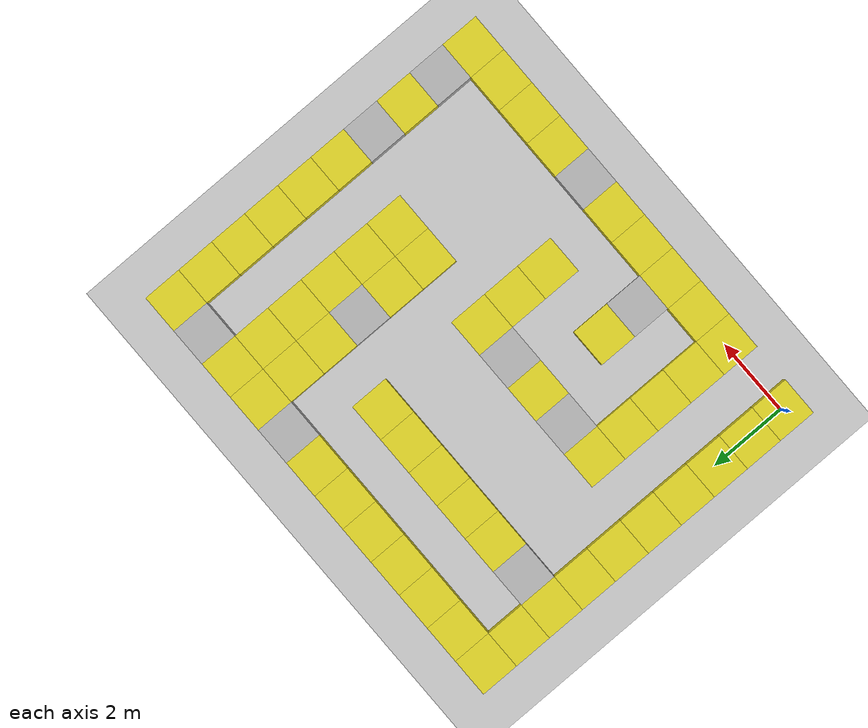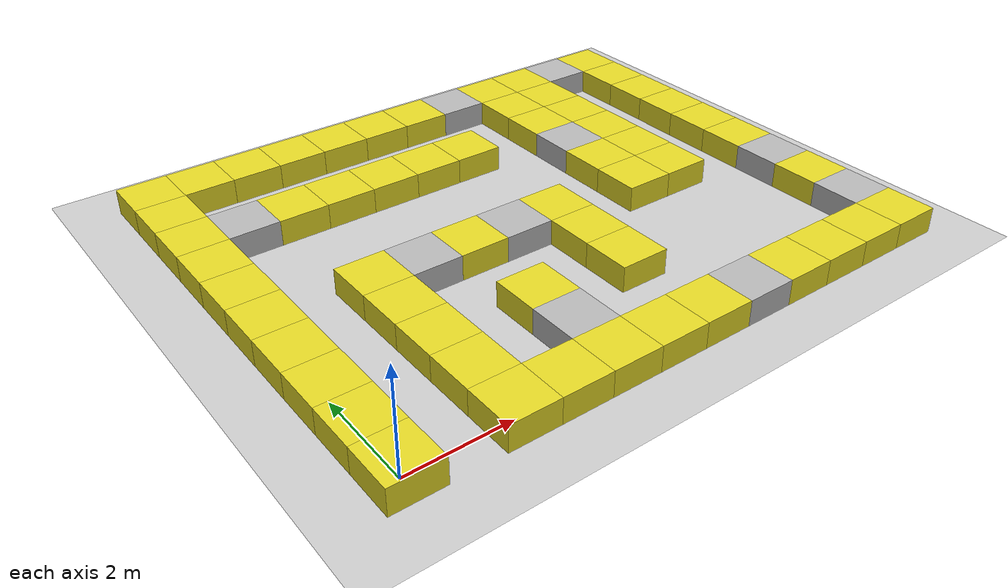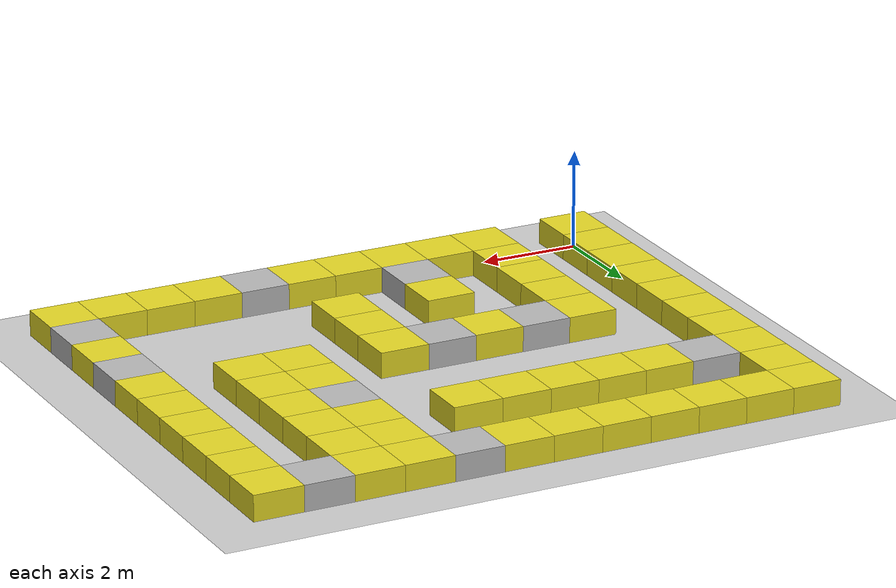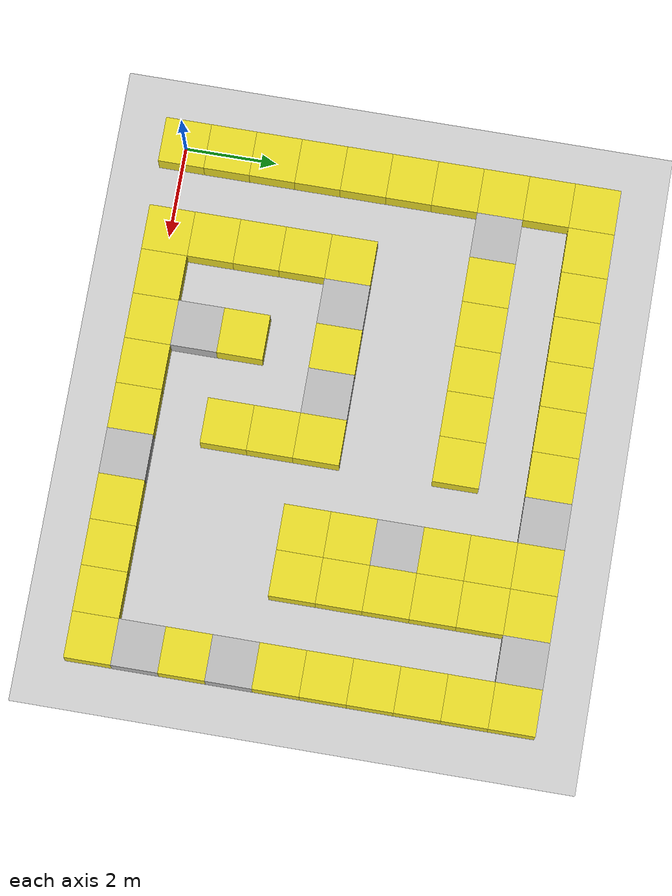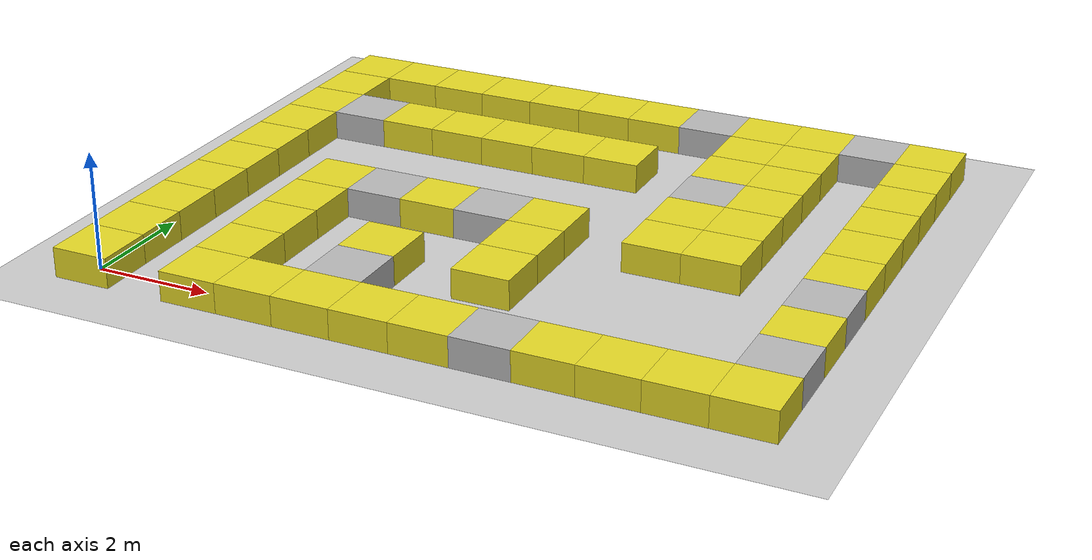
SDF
<sdf version="1.4">
 <world name="default">
  <scene><ambient>0.4 0.4 0.4 1</ambient><background>0.7 0.7 0.7 1</background><shadows>1</shadows></scene>
  <physics type="ode">
   <max_step_size>0.001</max_step_size>
   <real_time_factor>1</real_time_factor>
   <real_time_update_rate>1000</real_time_update_rate>
   <gravity>0 0 -9.8</gravity>
  </physics>
  <light name="sun" type="directional">
   <pose>0 0 10 0 -0 0</pose>
   <diffuse>0.8 0.8 0.8 1</diffuse>
   <specular>0.2 0.2 0.2 1</specular>
   <attenuation>
    <range>1000</range>
    <constant>0.9</constant>
    <linear>0.01</linear>
    <quadratic>0.001</quadratic>
   </attenuation>
   <direction>-0.5 0.1 -0.9</direction>
  </light>
  <model name="ground_plane">
   <static>1</static>
   <link name="link">
    <collision name="collision">
     <geometry><plane><normal>0 0 1</normal><size>100 100</size></plane></geometry>
     <surface><friction><ode><mu>100</mu><mu2>50</mu2></ode></friction></surface>
    </collision>
    <visual name="visual">
     <cast_shadows>0</cast_shadows>
     <geometry><plane><normal>0 0 1</normal><size>100 100</size></plane></geometry>
     <material>
      <script><uri>file://media/materials/scripts/gazebo.material</uri><name>Gazebo/Grey</name></script>
     </material>
    </visual>
    <velocity_decay><linear>0</linear><angular>0</angular></velocity_decay>
   </link>
  </model>
  <spherical_coordinates>
   <surface_model>EARTH_WGS84</surface_model>
   <latitude_deg>0</latitude_deg>
   <longitude_deg>0</longitude_deg>
   <elevation>0</elevation>
   <heading_deg>0</heading_deg>
  </spherical_coordinates>
  <model name="unit_box_1">
   <link name="link">
    <inertial>
     <mass>1</mass>
     <inertia><ixx>1</ixx><ixy>0</ixy><ixz>0</ixz><iyy>1</iyy><iyz>0</iyz><izz>1</izz></inertia>
    </inertial>
    <collision name="collision"><geometry><box><size>1 1 1</size></box></geometry></collision>
    <visual name="visual">
     <geometry><box><size>1 1 1</size></box></geometry>
     <material>
      <script><uri>file://media/materials/scripts/gazebo.material</uri><name>Gazebo/Yellow</name></script>
     </material>
    </visual>
    <velocity_decay><linear>0</linear><angular>0</angular></velocity_decay>
   </link>
   <static>1</static>
  </model>
  <model name="unit_box_2">
   <pose>2 0 0 0 -0 0</pose>
   <link name="link">
    <inertial>
     <mass>1</mass>
     <inertia><ixx>1</ixx><ixy>0</ixy><ixz>0</ixz><iyy>1</iyy><iyz>0</iyz><izz>1</izz></inertia>
    </inertial>
    <collision name="collision"><geometry><box><size>1 1 1</size></box></geometry></collision>
    <visual name="visual">
     <geometry><box><size>1 1 1</size></box></geometry>
     <material>
      <script><uri>file://media/materials/scripts/gazebo.material</uri><name>Gazebo/Yellow</name></script>
     </material>
    </visual>
    <velocity_decay><linear>0</linear><angular>0</angular></velocity_decay>
   </link>
   <static>1</static>
  </model>
  <model name="unit_box_3">
   <pose>3 0 0 0 -0 0</pose>
   <link name="link">
    <inertial>
     <mass>1</mass>
     <inertia><ixx>1</ixx><ixy>0</ixy><ixz>0</ixz><iyy>1</iyy><iyz>0</iyz><izz>1</izz></inertia>
    </inertial>
    <collision name="collision"><geometry><box><size>1 1 1</size></box></geometry></collision>
    <visual name="visual">
     <geometry><box><size>1 1 1</size></box></geometry>
     <material>
      <script><uri>file://media/materials/scripts/gazebo.material</uri><name>Gazebo/Yellow</name></script>
     </material>
    </visual>
    <velocity_decay><linear>0</linear><angular>0</angular></velocity_decay>
   </link>
   <static>1</static>
  </model>
  <model name="unit_box_4">
   <pose>4 0 0 0 -0 0</pose>
   <link name="link">
    <inertial>
     <mass>1</mass>
     <inertia><ixx>1</ixx><ixy>0</ixy><ixz>0</ixz><iyy>1</iyy><iyz>0</iyz><izz>1</izz></inertia>
    </inertial>
    <collision name="collision"><geometry><box><size>1 1 1</size></box></geometry></collision>
    <visual name="visual">
     <geometry><box><size>1 1 1</size></box></geometry>
     <material>
      <script><uri>file://media/materials/scripts/gazebo.material</uri><name>Gazebo/Yellow</name></script>
     </material>
    </visual>
    <velocity_decay><linear>0</linear><angular>0</angular></velocity_decay>
   </link>
   <static>1</static>
  </model>
  <model name="unit_box_5">
   <pose>5 0 0 0 -0 0</pose>
   <link name="link">
    <inertial>
     <mass>1</mass>
     <inertia><ixx>1</ixx><ixy>0</ixy><ixz>0</ixz><iyy>1</iyy><iyz>0</iyz><izz>1</izz></inertia>
    </inertial>
    <collision name="collision"><geometry><box><size>1 1 1</size></box></geometry></collision>
    <visual name="visual">
     <geometry><box><size>1 1 1</size></box></geometry>
     <material>
      <script><uri>file://media/materials/scripts/gazebo.material</uri><name>Gazebo/Yellow</name></script>
     </material>
    </visual>
    <velocity_decay><linear>0</linear><angular>0</angular></velocity_decay>
   </link>
   <static>1</static>
  </model>
  <model name="unit_box_6">
   <pose>6 0 0 0 -0 0</pose>
   <link name="link">
    <inertial>
     <mass>1</mass>
     <inertia><ixx>1</ixx><ixy>0</ixy><ixz>0</ixz><iyy>1</iyy><iyz>0</iyz><izz>1</izz></inertia>
    </inertial>
    <collision name="collision"><geometry><box><size>1 1 1</size></box></geometry></collision>
    <visual name="visual">
     <geometry><box><size>1 1 1</size></box></geometry>
     <material>
      <script><uri>file://media/materials/scripts/gazebo.material</uri><name>Gazebo/Yellow</name></script>
     </material>
    </visual>
    <velocity_decay><linear>0</linear><angular>0</angular></velocity_decay>
   </link>
   <static>1</static>
  </model>
  <model name="unit_box_7">
   <pose>7 0 0 0 -0 0</pose>
   <link name="link">
    <inertial>
     <mass>1</mass>
     <inertia><ixx>1</ixx><ixy>0</ixy><ixz>0</ixz><iyy>1</iyy><iyz>0</iyz><izz>1</izz></inertia>
    </inertial>
    <collision name="collision"><geometry><box><size>1 1 1</size></box></geometry></collision>
    <visual name="visual">
     <geometry><box><size>1 1 1</size></box></geometry>
     <material>
      <script>
       <uri>file:///home/student/catkin_ws/src/mazebot/code/mazebot/scripts/course_obejosel.material</uri>
       <name>course_obejosel/left90</name>
      </script>
     </material>
    </visual>
    <velocity_decay><linear>0</linear><angular>0</angular></velocity_decay>
   </link>
   <static>1</static>
  </model>
  <model name="unit_box_8">
   <pose>8 0 0 0 -0 0</pose>
   <link name="link">
    <inertial>
     <mass>1</mass>
     <inertia><ixx>1</ixx><ixy>0</ixy><ixz>0</ixz><iyy>1</iyy><iyz>0</iyz><izz>1</izz></inertia>
    </inertial>
    <collision name="collision"><geometry><box><size>1 1 1</size></box></geometry></collision>
    <visual name="visual">
     <geometry><box><size>1 1 1</size></box></geometry>
     <material>
      <script><uri>file://media/materials/scripts/gazebo.material</uri><name>Gazebo/Yellow</name></script>
     </material>
    </visual>
    <velocity_decay><linear>0</linear><angular>0</angular></velocity_decay>
   </link>
   <static>1</static>
  </model>
  <model name="unit_box_9">
   <pose>9 0 0 0 -0 0</pose>
   <link name="link">
    <inertial>
     <mass>1</mass>
     <inertia><ixx>1</ixx><ixy>0</ixy><ixz>0</ixz><iyy>1</iyy><iyz>0</iyz><izz>1</izz></inertia>
    </inertial>
    <collision name="collision"><geometry><box><size>1 1 1</size></box></geometry></collision>
    <visual name="visual">
     <geometry><box><size>1 1 1</size></box></geometry>
     <material>
      <script><uri>file://media/materials/scripts/gazebo.material</uri><name>Gazebo/Yellow</name></script>
     </material>
    </visual>
    <velocity_decay><linear>0</linear><angular>0</angular></velocity_decay>
   </link>
   <static>1</static>
  </model>
  <model name="unit_box_10">
   <pose>10 0 0 0 -0 0</pose>
   <link name="link">
    <inertial>
     <mass>1</mass>
     <inertia><ixx>1</ixx><ixy>0</ixy><ixz>0</ixz><iyy>1</iyy><iyz>0</iyz><izz>1</izz></inertia>
    </inertial>
    <collision name="collision"><geometry><box><size>1 1 1</size></box></geometry></collision>
    <visual name="visual">
     <geometry><box><size>1 1 1</size></box></geometry>
     <material>
      <script><uri>file://media/materials/scripts/gazebo.material</uri><name>Gazebo/Yellow</name></script>
     </material>
    </visual>
    <velocity_decay><linear>0</linear><angular>0</angular></velocity_decay>
   </link>
   <static>1</static>
  </model>
  <model name="unit_box_11">
   <pose>11 0 0 0 -0 0</pose>
   <link name="link">
    <inertial>
     <mass>1</mass>
     <inertia><ixx>1</ixx><ixy>0</ixy><ixz>0</ixz><iyy>1</iyy><iyz>0</iyz><izz>1</izz></inertia>
    </inertial>
    <collision name="collision"><geometry><box><size>1 1 1</size></box></geometry></collision>
    <visual name="visual">
     <geometry><box><size>1 1 1</size></box></geometry>
     <material>
      <script><uri>file://media/materials/scripts/gazebo.material</uri><name>Gazebo/Yellow</name></script>
     </material>
    </visual>
    <velocity_decay><linear>0</linear><angular>0</angular></velocity_decay>
   </link>
   <static>1</static>
  </model>
  <model name="unit_box_12">
   <pose>0 1 0 0 -0 0</pose>
   <link name="link">
    <inertial>
     <mass>1</mass>
     <inertia><ixx>1</ixx><ixy>0</ixy><ixz>0</ixz><iyy>1</iyy><iyz>0</iyz><izz>1</izz></inertia>
    </inertial>
    <collision name="collision"><geometry><box><size>1 1 1</size></box></geometry></collision>
    <visual name="visual">
     <geometry><box><size>1 1 1</size></box></geometry>
     <material>
      <script><uri>file://media/materials/scripts/gazebo.material</uri><name>Gazebo/Yellow</name></script>
     </material>
    </visual>
    <velocity_decay><linear>0</linear><angular>0</angular></velocity_decay>
   </link>
   <static>1</static>
  </model>
  <model name="unit_box_13">
   <pose>2 1 0 0 -0 0</pose>
   <link name="link">
    <inertial>
     <mass>1</mass>
     <inertia><ixx>1</ixx><ixy>0</ixy><ixz>0</ixz><iyy>1</iyy><iyz>0</iyz><izz>1</izz></inertia>
    </inertial>
    <collision name="collision"><geometry><box><size>1 1 1</size></box></geometry></collision>
    <visual name="visual">
     <geometry><box><size>1 1 1</size></box></geometry>
     <material>
      <script><uri>file://media/materials/scripts/gazebo.material</uri><name>Gazebo/Yellow</name></script>
     </material>
    </visual>
    <velocity_decay><linear>0</linear><angular>0</angular></velocity_decay>
   </link>
   <static>1</static>
  </model>
  <model name="unit_box_14">
   <pose>4 1 0 0 -0 0</pose>
   <link name="link">
    <inertial>
     <mass>1</mass>
     <inertia><ixx>1</ixx><ixy>0</ixy><ixz>0</ixz><iyy>1</iyy><iyz>0</iyz><izz>1</izz></inertia>
    </inertial>
    <collision name="collision"><geometry><box><size>1 1 1</size></box></geometry></collision>
    <visual name="visual">
     <geometry><box><size>1 1 1</size></box></geometry>
     <material>
      <script>
       <uri>file:///home/student/catkin_ws/src/mazebot/code/mazebot/scripts/course_obejosel.material</uri>
       <name>course_obejosel/turn180</name>
      </script>
     </material>
    </visual>
    <velocity_decay><linear>0</linear><angular>0</angular></velocity_decay>
   </link>
   <static>1</static>
  </model>
  <model name="unit_box_15">
   <pose>11 1 0 0 -0 0</pose>
   <link name="link">
    <inertial>
     <mass>1</mass>
     <inertia><ixx>1</ixx><ixy>0</ixy><ixz>0</ixz><iyy>1</iyy><iyz>0</iyz><izz>1</izz></inertia>
    </inertial>
    <collision name="collision"><geometry><box><size>1 1 1</size></box></geometry></collision>
    <visual name="visual">
     <geometry><box><size>1 1 1</size></box></geometry>
     <material>
      <script>
       <uri>file:///home/student/catkin_ws/src/mazebot/code/mazebot/scripts/course_obejosel.material</uri>
       <name>course_obejosel/left90</name>
      </script>
     </material>
    </visual>
    <velocity_decay><linear>0</linear><angular>0</angular></velocity_decay>
   </link>
   <static>1</static>
  </model>
  <model name="unit_box_16">
   <pose>0 2 0 0 -0 0</pose>
   <link name="link">
    <inertial>
     <mass>1</mass>
     <inertia><ixx>1</ixx><ixy>0</ixy><ixz>0</ixz><iyy>1</iyy><iyz>0</iyz><izz>1</izz></inertia>
    </inertial>
    <collision name="collision"><geometry><box><size>1 1 1</size></box></geometry></collision>
    <visual name="visual">
     <geometry><box><size>1 1 1</size></box></geometry>
     <material>
      <script><uri>file://media/materials/scripts/gazebo.material</uri><name>Gazebo/Yellow</name></script>
     </material>
    </visual>
    <velocity_decay><linear>0</linear><angular>0</angular></velocity_decay>
   </link>
   <static>1</static>
  </model>
  <model name="unit_box_17">
   <pose>2 2 0 0 -0 0</pose>
   <link name="link">
    <inertial>
     <mass>1</mass>
     <inertia><ixx>1</ixx><ixy>0</ixy><ixz>0</ixz><iyy>1</iyy><iyz>0</iyz><izz>1</izz></inertia>
    </inertial>
    <collision name="collision"><geometry><box><size>1 1 1</size></box></geometry></collision>
    <visual name="visual">
     <geometry><box><size>1 1 1</size></box></geometry>
     <material>
      <script><uri>file://media/materials/scripts/gazebo.material</uri><name>Gazebo/Yellow</name></script>
     </material>
    </visual>
    <velocity_decay><linear>0</linear><angular>0</angular></velocity_decay>
   </link>
   <static>1</static>
  </model>
  <model name="unit_box_18">
   <pose>4 2 0 0 -0 0</pose>
   <link name="link">
    <inertial>
     <mass>1</mass>
     <inertia><ixx>1</ixx><ixy>0</ixy><ixz>0</ixz><iyy>1</iyy><iyz>0</iyz><izz>1</izz></inertia>
    </inertial>
    <collision name="collision"><geometry><box><size>1 1 1</size></box></geometry></collision>
    <visual name="visual">
     <geometry><box><size>1 1 1</size></box></geometry>
     <material>
      <script><uri>file://media/materials/scripts/gazebo.material</uri><name>Gazebo/Yellow</name></script>
     </material>
    </visual>
    <velocity_decay><linear>0</linear><angular>0</angular></velocity_decay>
   </link>
   <static>1</static>
  </model>
  <model name="unit_box_19">
   <pose>6 2 0 0 -0 0</pose>
   <link name="link">
    <inertial>
     <mass>1</mass>
     <inertia><ixx>1</ixx><ixy>0</ixy><ixz>0</ixz><iyy>1</iyy><iyz>0</iyz><izz>1</izz></inertia>
    </inertial>
    <collision name="collision"><geometry><box><size>1 1 1</size></box></geometry></collision>
    <visual name="visual">
     <geometry><box><size>1 1 1</size></box></geometry>
     <material>
      <script><uri>file://media/materials/scripts/gazebo.material</uri><name>Gazebo/Yellow</name></script>
     </material>
    </visual>
    <velocity_decay><linear>0</linear><angular>0</angular></velocity_decay>
   </link>
   <static>1</static>
  </model>
  <model name="unit_box_21">
   <pose>11 2 0 0 -0 0</pose>
   <link name="link">
    <inertial>
     <mass>1</mass>
     <inertia><ixx>1</ixx><ixy>0</ixy><ixz>0</ixz><iyy>1</iyy><iyz>0</iyz><izz>1</izz></inertia>
    </inertial>
    <collision name="collision"><geometry><box><size>1 1 1</size></box></geometry></collision>
    <visual name="visual">
     <geometry><box><size>1 1 1</size></box></geometry>
     <material>
      <script><uri>file://media/materials/scripts/gazebo.material</uri><name>Gazebo/Yellow</name></script>
     </material>
    </visual>
    <velocity_decay><linear>0</linear><angular>0</angular></velocity_decay>
   </link>
   <static>1</static>
  </model>
  <model name="unit_box_22">
   <pose>0 3 0 0 -0 0</pose>
   <link name="link">
    <inertial>
     <mass>1</mass>
     <inertia><ixx>1</ixx><ixy>0</ixy><ixz>0</ixz><iyy>1</iyy><iyz>0</iyz><izz>1</izz></inertia>
    </inertial>
    <collision name="collision"><geometry><box><size>1 1 1</size></box></geometry></collision>
    <visual name="visual">
     <geometry><box><size>1 1 1</size></box></geometry>
     <material>
      <script><uri>file://media/materials/scripts/gazebo.material</uri><name>Gazebo/Yellow</name></script>
     </material>
    </visual>
    <velocity_decay><linear>0</linear><angular>0</angular></velocity_decay>
   </link>
   <static>1</static>
  </model>
  <model name="unit_box_23">
   <pose>2 3 0 0 -0 0</pose>
   <link name="link">
    <inertial>
     <mass>1</mass>
     <inertia><ixx>1</ixx><ixy>0</ixy><ixz>0</ixz><iyy>1</iyy><iyz>0</iyz><izz>1</izz></inertia>
    </inertial>
    <collision name="collision"><geometry><box><size>1 1 1</size></box></geometry></collision>
    <visual name="visual">
     <geometry><box><size>1 1 1</size></box></geometry>
     <material>
      <script><uri>file://media/materials/scripts/gazebo.material</uri><name>Gazebo/Yellow</name></script>
     </material>
    </visual>
    <velocity_decay><linear>0</linear><angular>0</angular></velocity_decay>
   </link>
   <static>1</static>
  </model>
  <model name="unit_box_24">
   <pose>6 3 0 0 -0 0</pose>
   <link name="link">
    <inertial>
     <mass>1</mass>
     <inertia><ixx>1</ixx><ixy>0</ixy><ixz>0</ixz><iyy>1</iyy><iyz>0</iyz><izz>1</izz></inertia>
    </inertial>
    <collision name="collision"><geometry><box><size>1 1 1</size></box></geometry></collision>
    <visual name="visual">
     <geometry><box><size>1 1 1</size></box></geometry>
     <material>
      <script><uri>file://media/materials/scripts/gazebo.material</uri><name>Gazebo/Yellow</name></script>
     </material>
    </visual>
    <velocity_decay><linear>0</linear><angular>0</angular></velocity_decay>
   </link>
   <static>1</static>
  </model>
  <model name="unit_box_25">
   <pose>11 3 0 0 -0 0</pose>
   <link name="link">
    <inertial>
     <mass>1</mass>
     <inertia><ixx>1</ixx><ixy>0</ixy><ixz>0</ixz><iyy>1</iyy><iyz>0</iyz><izz>1</izz></inertia>
    </inertial>
    <collision name="collision"><geometry><box><size>1 1 1</size></box></geometry></collision>
    <visual name="visual">
     <geometry><box><size>1 1 1</size></box></geometry>
     <material>
      <script>
       <uri>file:///home/student/catkin_ws/src/mazebot/code/mazebot/scripts/course_obejosel.material</uri>
       <name>course_obejosel/left90</name>
      </script>
     </material>
    </visual>
    <velocity_decay><linear>0</linear><angular>0</angular></velocity_decay>
   </link>
   <static>1</static>
  </model>
  <model name="unit_box_26">
   <pose>0 4 0 0 -0 0</pose>
   <link name="link">
    <inertial>
     <mass>1</mass>
     <inertia><ixx>1</ixx><ixy>0</ixy><ixz>0</ixz><iyy>1</iyy><iyz>0</iyz><izz>1</izz></inertia>
    </inertial>
    <collision name="collision"><geometry><box><size>1 1 1</size></box></geometry></collision>
    <visual name="visual">
     <geometry><box><size>1 1 1</size></box></geometry>
     <material>
      <script><uri>file://media/materials/scripts/gazebo.material</uri><name>Gazebo/Yellow</name></script>
     </material>
    </visual>
    <velocity_decay><linear>0</linear><angular>0</angular></velocity_decay>
   </link>
   <static>1</static>
  </model>
  <model name="unit_box_27">
   <pose>2 4 0 0 -0 0</pose>
   <link name="link">
    <inertial>
     <mass>1</mass>
     <inertia><ixx>1</ixx><ixy>0</ixy><ixz>0</ixz><iyy>1</iyy><iyz>0</iyz><izz>1</izz></inertia>
    </inertial>
    <collision name="collision"><geometry><box><size>1 1 1</size></box></geometry></collision>
    <visual name="visual">
     <geometry><box><size>1 1 1</size></box></geometry>
     <material>
      <script><uri>file://media/materials/scripts/gazebo.material</uri><name>Gazebo/Yellow</name></script>
     </material>
    </visual>
    <velocity_decay><linear>0</linear><angular>0</angular></velocity_decay>
   </link>
   <static>1</static>
  </model>
  <model name="unit_box_28">
   <pose>3 4 0 0 -0 0</pose>
   <link name="link">
    <inertial>
     <mass>1</mass>
     <inertia><ixx>1</ixx><ixy>0</ixy><ixz>0</ixz><iyy>1</iyy><iyz>0</iyz><izz>1</izz></inertia>
    </inertial>
    <collision name="collision"><geometry><box><size>1 1 1</size></box></geometry></collision>
    <visual name="visual">
     <geometry><box><size>1 1 1</size></box></geometry>
     <material>
      <script>
       <uri>file:///home/student/catkin_ws/src/mazebot/code/mazebot/scripts/course_obejosel.material</uri>
       <name>course_obejosel/turn180</name>
      </script>
     </material>
    </visual>
    <velocity_decay><linear>0</linear><angular>0</angular></velocity_decay>
   </link>
   <static>1</static>
  </model>
  <model name="unit_box_29">
   <pose>4 4 0 0 -0 0</pose>
   <link name="link">
    <inertial>
     <mass>1</mass>
     <inertia><ixx>1</ixx><ixy>0</ixy><ixz>0</ixz><iyy>1</iyy><iyz>0</iyz><izz>1</izz></inertia>
    </inertial>
    <collision name="collision"><geometry><box><size>1 1 1</size></box></geometry></collision>
    <visual name="visual">
     <geometry><box><size>1 1 1</size></box></geometry>
     <material>
      <script><uri>file://media/materials/scripts/gazebo.material</uri><name>Gazebo/Yellow</name></script>
     </material>
    </visual>
    <velocity_decay><linear>0</linear><angular>0</angular></velocity_decay>
   </link>
   <static>1</static>
  </model>
  <model name="unit_box_30">
   <pose>5 4 0 0 -0 0</pose>
   <link name="link">
    <inertial>
     <mass>1</mass>
     <inertia><ixx>1</ixx><ixy>0</ixy><ixz>0</ixz><iyy>1</iyy><iyz>0</iyz><izz>1</izz></inertia>
    </inertial>
    <collision name="collision"><geometry><box><size>1 1 1</size></box></geometry></collision>
    <visual name="visual">
     <geometry><box><size>1 1 1</size></box></geometry>
     <material>
      <script>
       <uri>file:///home/student/catkin_ws/src/mazebot/code/mazebot/scripts/course_obejosel.material</uri>
       <name>course_obejosel/turn180</name>
      </script>
     </material>
    </visual>
    <velocity_decay><linear>0</linear><angular>0</angular></velocity_decay>
   </link>
   <static>1</static>
  </model>
  <model name="unit_box_31">
   <pose>6 4 0 0 -0 0</pose>
   <link name="link">
    <inertial>
     <mass>1</mass>
     <inertia><ixx>1</ixx><ixy>0</ixy><ixz>0</ixz><iyy>1</iyy><iyz>0</iyz><izz>1</izz></inertia>
    </inertial>
    <collision name="collision"><geometry><box><size>1 1 1</size></box></geometry></collision>
    <visual name="visual">
     <geometry><box><size>1 1 1</size></box></geometry>
     <material>
      <script><uri>file://media/materials/scripts/gazebo.material</uri><name>Gazebo/Yellow</name></script>
     </material>
    </visual>
    <velocity_decay><linear>0</linear><angular>0</angular></velocity_decay>
   </link>
   <static>1</static>
  </model>
  <model name="unit_box_32">
   <pose>8 4 0 0 -0 0</pose>
   <link name="link">
    <inertial>
     <mass>1</mass>
     <inertia><ixx>1</ixx><ixy>0</ixy><ixz>0</ixz><iyy>1</iyy><iyz>0</iyz><izz>1</izz></inertia>
    </inertial>
    <collision name="collision"><geometry><box><size>1 1 1</size></box></geometry></collision>
    <visual name="visual">
     <geometry><box><size>1 1 1</size></box></geometry>
     <material>
      <script><uri>file://media/materials/scripts/gazebo.material</uri><name>Gazebo/Yellow</name></script>
     </material>
    </visual>
    <velocity_decay><linear>0</linear><angular>0</angular></velocity_decay>
   </link>
   <static>1</static>
  </model>
  <model name="unit_box_33">
   <pose>9 4 0 0 -0 0</pose>
   <link name="link">
    <inertial>
     <mass>1</mass>
     <inertia><ixx>1</ixx><ixy>0</ixy><ixz>0</ixz><iyy>1</iyy><iyz>0</iyz><izz>1</izz></inertia>
    </inertial>
    <collision name="collision"><geometry><box><size>1 1 1</size></box></geometry></collision>
    <visual name="visual">
     <geometry><box><size>1 1 1</size></box></geometry>
     <material>
      <script><uri>file://media/materials/scripts/gazebo.material</uri><name>Gazebo/Yellow</name></script>
     </material>
    </visual>
    <velocity_decay><linear>0</linear><angular>0</angular></velocity_decay>
   </link>
   <static>1</static>
  </model>
  <model name="unit_box_34">
   <pose>11 4 0 0 -0 0</pose>
   <link name="link">
    <inertial>
     <mass>1</mass>
     <inertia><ixx>1</ixx><ixy>0</ixy><ixz>0</ixz><iyy>1</iyy><iyz>0</iyz><izz>1</izz></inertia>
    </inertial>
    <collision name="collision"><geometry><box><size>1 1 1</size></box></geometry></collision>
    <visual name="visual">
     <geometry><box><size>1 1 1</size></box></geometry>
     <material>
      <script><uri>file://media/materials/scripts/gazebo.material</uri><name>Gazebo/Yellow</name></script>
     </material>
    </visual>
    <velocity_decay><linear>0</linear><angular>0</angular></velocity_decay>
   </link>
   <static>1</static>
  </model>
  <model name="unit_box_35">
   <pose>0 5 0 0 -0 0</pose>
   <link name="link">
    <inertial>
     <mass>1</mass>
     <inertia><ixx>1</ixx><ixy>0</ixy><ixz>0</ixz><iyy>1</iyy><iyz>0</iyz><izz>1</izz></inertia>
    </inertial>
    <collision name="collision"><geometry><box><size>1 1 1</size></box></geometry></collision>
    <visual name="visual">
     <geometry><box><size>1 1 1</size></box></geometry>
     <material>
      <script><uri>file://media/materials/scripts/gazebo.material</uri><name>Gazebo/Yellow</name></script>
     </material>
    </visual>
    <velocity_decay><linear>0</linear><angular>0</angular></velocity_decay>
   </link>
   <static>1</static>
  </model>
  <model name="unit_box_41">
   <pose>8 5 0 0 -0 0</pose>
   <link name="link">
    <inertial>
     <mass>1</mass>
     <inertia><ixx>1</ixx><ixy>0</ixy><ixz>0</ixz><iyy>1</iyy><iyz>0</iyz><izz>1</izz></inertia>
    </inertial>
    <collision name="collision"><geometry><box><size>1 1 1</size></box></geometry></collision>
    <visual name="visual">
     <geometry><box><size>1 1 1</size></box></geometry>
     <material>
      <script><uri>file://media/materials/scripts/gazebo.material</uri><name>Gazebo/Yellow</name></script>
     </material>
    </visual>
    <velocity_decay><linear>0</linear><angular>0</angular></velocity_decay>
   </link>
   <static>1</static>
  </model>
  <model name="unit_box_42">
   <pose>9 5 0 0 -0 0</pose>
   <link name="link">
    <inertial>
     <mass>1</mass>
     <inertia><ixx>1</ixx><ixy>0</ixy><ixz>0</ixz><iyy>1</iyy><iyz>0</iyz><izz>1</izz></inertia>
    </inertial>
    <collision name="collision"><geometry><box><size>1 1 1</size></box></geometry></collision>
    <visual name="visual">
     <geometry><box><size>1 1 1</size></box></geometry>
     <material>
      <script><uri>file://media/materials/scripts/gazebo.material</uri><name>Gazebo/Yellow</name></script>
     </material>
    </visual>
    <velocity_decay><linear>0</linear><angular>0</angular></velocity_decay>
   </link>
   <static>1</static>
  </model>
  <model name="unit_box_43">
   <pose>11 5 0 0 -0 0</pose>
   <link name="link">
    <inertial>
     <mass>1</mass>
     <inertia><ixx>1</ixx><ixy>0</ixy><ixz>0</ixz><iyy>1</iyy><iyz>0</iyz><izz>1</izz></inertia>
    </inertial>
    <collision name="collision"><geometry><box><size>1 1 1</size></box></geometry></collision>
    <visual name="visual">
     <geometry><box><size>1 1 1</size></box></geometry>
     <material>
      <script><uri>file://media/materials/scripts/gazebo.material</uri><name>Gazebo/Yellow</name></script>
     </material>
    </visual>
    <velocity_decay><linear>0</linear><angular>0</angular></velocity_decay>
   </link>
   <static>1</static>
  </model>
  <model name="unit_box_44">
   <pose>0 6 0 0 -0 0</pose>
   <link name="link">
    <inertial>
     <mass>1</mass>
     <inertia><ixx>1</ixx><ixy>0</ixy><ixz>0</ixz><iyy>1</iyy><iyz>0</iyz><izz>1</izz></inertia>
    </inertial>
    <collision name="collision"><geometry><box><size>1 1 1</size></box></geometry></collision>
    <visual name="visual">
     <geometry><box><size>1 1 1</size></box></geometry>
     <material>
      <script><uri>file://media/materials/scripts/gazebo.material</uri><name>Gazebo/Yellow</name></script>
     </material>
    </visual>
    <velocity_decay><linear>0</linear><angular>0</angular></velocity_decay>
   </link>
   <static>1</static>
  </model>
  <model name="unit_box_45">
   <pose>8 6 0 0 -0 0</pose>
   <link name="link">
    <inertial>
     <mass>1</mass>
     <inertia><ixx>1</ixx><ixy>0</ixy><ixz>0</ixz><iyy>1</iyy><iyz>0</iyz><izz>1</izz></inertia>
    </inertial>
    <collision name="collision"><geometry><box><size>1 1 1</size></box></geometry></collision>
    <visual name="visual">
     <geometry><box><size>1 1 1</size></box></geometry>
     <material>
      <script>
       <uri>file:///home/student/catkin_ws/src/mazebot/code/mazebot/scripts/course_obejosel.material</uri>
       <name>course_obejosel/right90</name>
      </script>
     </material>
    </visual>
    <velocity_decay><linear>0</linear><angular>0</angular></velocity_decay>
   </link>
   <static>1</static>
  </model>
  <model name="unit_box_46">
   <pose>9 6 0 0 -0 0</pose>
   <link name="link">
    <inertial>
     <mass>1</mass>
     <inertia><ixx>1</ixx><ixy>0</ixy><ixz>0</ixz><iyy>1</iyy><iyz>0</iyz><izz>1</izz></inertia>
    </inertial>
    <collision name="collision"><geometry><box><size>1 1 1</size></box></geometry></collision>
    <visual name="visual">
     <geometry><box><size>1 1 1</size></box></geometry>
     <material>
      <script><uri>file://media/materials/scripts/gazebo.material</uri><name>Gazebo/Yellow</name></script>
     </material>
    </visual>
    <velocity_decay><linear>0</linear><angular>0</angular></velocity_decay>
   </link>
   <static>1</static>
  </model>
  <model name="unit_box_47">
   <pose>11 6 0 0 -0 0</pose>
   <link name="link">
    <inertial>
     <mass>1</mass>
     <inertia><ixx>1</ixx><ixy>0</ixy><ixz>0</ixz><iyy>1</iyy><iyz>0</iyz><izz>1</izz></inertia>
    </inertial>
    <collision name="collision"><geometry><box><size>1 1 1</size></box></geometry></collision>
    <visual name="visual">
     <geometry><box><size>1 1 1</size></box></geometry>
     <material>
      <script><uri>file://media/materials/scripts/gazebo.material</uri><name>Gazebo/Yellow</name></script>
     </material>
    </visual>
    <velocity_decay><linear>0</linear><angular>0</angular></velocity_decay>
   </link>
   <static>1</static>
  </model>
  <model name="unit_box_48">
   <pose>0 7 0 0 -0 0</pose>
   <link name="link">
    <inertial>
     <mass>1</mass>
     <inertia><ixx>1</ixx><ixy>0</ixy><ixz>0</ixz><iyy>1</iyy><iyz>0</iyz><izz>1</izz></inertia>
    </inertial>
    <collision name="collision"><geometry><box><size>1 1 1</size></box></geometry></collision>
    <visual name="visual">
     <geometry><box><size>1 1 1</size></box></geometry>
     <material>
      <script><uri>file://media/materials/scripts/gazebo.material</uri><name>Gazebo/Yellow</name></script>
     </material>
    </visual>
    <velocity_decay><linear>0</linear><angular>0</angular></velocity_decay>
   </link>
   <static>1</static>
  </model>
  <model name="unit_box_49">
   <pose>1 7 0 0 -0 0</pose>
   <link name="link">
    <inertial>
     <mass>1</mass>
     <inertia><ixx>1</ixx><ixy>0</ixy><ixz>0</ixz><iyy>1</iyy><iyz>0</iyz><izz>1</izz></inertia>
    </inertial>
    <collision name="collision"><geometry><box><size>1 1 1</size></box></geometry></collision>
    <visual name="visual">
     <geometry><box><size>1 1 1</size></box></geometry>
     <material>
      <script>
       <uri>file:///home/student/catkin_ws/src/mazebot/code/mazebot/scripts/course_obejosel.material</uri>
       <name>course_obejosel/right90</name>
      </script>
     </material>
    </visual>
    <velocity_decay><linear>0</linear><angular>0</angular></velocity_decay>
   </link>
   <static>1</static>
  </model>
  <model name="unit_box_50">
   <pose>2 7 0 0 -0 0</pose>
   <link name="link">
    <inertial>
     <mass>1</mass>
     <inertia><ixx>1</ixx><ixy>0</ixy><ixz>0</ixz><iyy>1</iyy><iyz>0</iyz><izz>1</izz></inertia>
    </inertial>
    <collision name="collision"><geometry><box><size>1 1 1</size></box></geometry></collision>
    <visual name="visual">
     <geometry><box><size>1 1 1</size></box></geometry>
     <material>
      <script><uri>file://media/materials/scripts/gazebo.material</uri><name>Gazebo/Yellow</name></script>
     </material>
    </visual>
    <velocity_decay><linear>0</linear><angular>0</angular></velocity_decay>
   </link>
   <static>1</static>
  </model>
  <model name="unit_box_51">
   <pose>3 7 0 0 -0 0</pose>
   <link name="link">
    <inertial>
     <mass>1</mass>
     <inertia><ixx>1</ixx><ixy>0</ixy><ixz>0</ixz><iyy>1</iyy><iyz>0</iyz><izz>1</izz></inertia>
    </inertial>
    <collision name="collision"><geometry><box><size>1 1 1</size></box></geometry></collision>
    <visual name="visual">
     <geometry><box><size>1 1 1</size></box></geometry>
     <material>
      <script><uri>file://media/materials/scripts/gazebo.material</uri><name>Gazebo/Yellow</name></script>
     </material>
    </visual>
    <velocity_decay><linear>0</linear><angular>0</angular></velocity_decay>
   </link>
   <static>1</static>
  </model>
  <model name="unit_box_52">
   <pose>4 7 0 0 -0 0</pose>
   <link name="link">
    <inertial>
     <mass>1</mass>
     <inertia><ixx>1</ixx><ixy>0</ixy><ixz>0</ixz><iyy>1</iyy><iyz>0</iyz><izz>1</izz></inertia>
    </inertial>
    <collision name="collision"><geometry><box><size>1 1 1</size></box></geometry></collision>
    <visual name="visual">
     <geometry><box><size>1 1 1</size></box></geometry>
     <material>
      <script><uri>file://media/materials/scripts/gazebo.material</uri><name>Gazebo/Yellow</name></script>
     </material>
    </visual>
    <velocity_decay><linear>0</linear><angular>0</angular></velocity_decay>
   </link>
   <static>1</static>
  </model>
  <model name="unit_box_53">
   <pose>5 7 0 0 -0 0</pose>
   <link name="link">
    <inertial>
     <mass>1</mass>
     <inertia><ixx>1</ixx><ixy>0</ixy><ixz>0</ixz><iyy>1</iyy><iyz>0</iyz><izz>1</izz></inertia>
    </inertial>
    <collision name="collision"><geometry><box><size>1 1 1</size></box></geometry></collision>
    <visual name="visual">
     <geometry><box><size>1 1 1</size></box></geometry>
     <material>
      <script><uri>file://media/materials/scripts/gazebo.material</uri><name>Gazebo/Yellow</name></script>
     </material>
    </visual>
    <velocity_decay><linear>0</linear><angular>0</angular></velocity_decay>
   </link>
   <static>1</static>
  </model>
  <model name="unit_box_54">
   <pose>6 7 0 0 -0 0</pose>
   <link name="link">
    <inertial>
     <mass>1</mass>
     <inertia><ixx>1</ixx><ixy>0</ixy><ixz>0</ixz><iyy>1</iyy><iyz>0</iyz><izz>1</izz></inertia>
    </inertial>
    <collision name="collision"><geometry><box><size>1 1 1</size></box></geometry></collision>
    <visual name="visual">
     <geometry><box><size>1 1 1</size></box></geometry>
     <material>
      <script><uri>file://media/materials/scripts/gazebo.material</uri><name>Gazebo/Yellow</name></script>
     </material>
    </visual>
    <velocity_decay><linear>0</linear><angular>0</angular></velocity_decay>
   </link>
   <static>1</static>
  </model>
  <model name="unit_box_55">
   <pose>8 7 0 0 -0 0</pose>
   <link name="link">
    <inertial>
     <mass>1</mass>
     <inertia><ixx>1</ixx><ixy>0</ixy><ixz>0</ixz><iyy>1</iyy><iyz>0</iyz><izz>1</izz></inertia>
    </inertial>
    <collision name="collision"><geometry><box><size>1 1 1</size></box></geometry></collision>
    <visual name="visual">
     <geometry><box><size>1 1 1</size></box></geometry>
     <material>
      <script><uri>file://media/materials/scripts/gazebo.material</uri><name>Gazebo/Yellow</name></script>
     </material>
    </visual>
    <velocity_decay><linear>0</linear><angular>0</angular></velocity_decay>
   </link>
   <static>1</static>
  </model>
  <model name="unit_box_56">
   <pose>9 7 0 0 -0 0</pose>
   <link name="link">
    <inertial>
     <mass>1</mass>
     <inertia><ixx>1</ixx><ixy>0</ixy><ixz>0</ixz><iyy>1</iyy><iyz>0</iyz><izz>1</izz></inertia>
    </inertial>
    <collision name="collision"><geometry><box><size>1 1 1</size></box></geometry></collision>
    <visual name="visual">
     <geometry><box><size>1 1 1</size></box></geometry>
     <material>
      <script><uri>file://media/materials/scripts/gazebo.material</uri><name>Gazebo/Yellow</name></script>
     </material>
    </visual>
    <velocity_decay><linear>0</linear><angular>0</angular></velocity_decay>
   </link>
   <static>1</static>
  </model>
  <model name="unit_box_57">
   <pose>11 7 0 0 -0 0</pose>
   <link name="link">
    <inertial>
     <mass>1</mass>
     <inertia><ixx>1</ixx><ixy>0</ixy><ixz>0</ixz><iyy>1</iyy><iyz>0</iyz><izz>1</izz></inertia>
    </inertial>
    <collision name="collision"><geometry><box><size>1 1 1</size></box></geometry></collision>
    <visual name="visual">
     <geometry><box><size>1 1 1</size></box></geometry>
     <material>
      <script><uri>file://media/materials/scripts/gazebo.material</uri><name>Gazebo/Yellow</name></script>
     </material>
    </visual>
    <velocity_decay><linear>0</linear><angular>0</angular></velocity_decay>
   </link>
   <static>1</static>
  </model>
  <model name="unit_box_58">
   <pose>0 8 0 0 -0 0</pose>
   <link name="link">
    <inertial>
     <mass>1</mass>
     <inertia><ixx>1</ixx><ixy>0</ixy><ixz>0</ixz><iyy>1</iyy><iyz>0</iyz><izz>1</izz></inertia>
    </inertial>
    <collision name="collision"><geometry><box><size>1 1 1</size></box></geometry></collision>
    <visual name="visual">
     <geometry><box><size>1 1 1</size></box></geometry>
     <material>
      <script><uri>file://media/materials/scripts/gazebo.material</uri><name>Gazebo/Yellow</name></script>
     </material>
    </visual>
    <velocity_decay><linear>0</linear><angular>0</angular></velocity_decay>
   </link>
   <static>1</static>
  </model>
  <model name="unit_box_59">
   <pose>8 8 0 0 -0 0</pose>
   <link name="link">
    <inertial>
     <mass>1</mass>
     <inertia><ixx>1</ixx><ixy>0</ixy><ixz>0</ixz><iyy>1</iyy><iyz>0</iyz><izz>1</izz></inertia>
    </inertial>
    <collision name="collision"><geometry><box><size>1 1 1</size></box></geometry></collision>
    <visual name="visual">
     <geometry><box><size>1 1 1</size></box></geometry>
     <material>
      <script><uri>file://media/materials/scripts/gazebo.material</uri><name>Gazebo/Yellow</name></script>
     </material>
    </visual>
    <velocity_decay><linear>0</linear><angular>0</angular></velocity_decay>
   </link>
   <static>1</static>
  </model>
  <model name="unit_box_60">
   <pose>9 8 0 0 -0 0</pose>
   <link name="link">
    <inertial>
     <mass>1</mass>
     <inertia><ixx>1</ixx><ixy>0</ixy><ixz>0</ixz><iyy>1</iyy><iyz>0</iyz><izz>1</izz></inertia>
    </inertial>
    <collision name="collision"><geometry><box><size>1 1 1</size></box></geometry></collision>
    <visual name="visual">
     <geometry><box><size>1 1 1</size></box></geometry>
     <material>
      <script><uri>file://media/materials/scripts/gazebo.material</uri><name>Gazebo/Yellow</name></script>
     </material>
    </visual>
    <velocity_decay><linear>0</linear><angular>0</angular></velocity_decay>
   </link>
   <static>1</static>
  </model>
  <model name="unit_box_61">
   <pose>11 8 0 0 -0 0</pose>
   <link name="link">
    <inertial>
     <mass>1</mass>
     <inertia><ixx>1</ixx><ixy>0</ixy><ixz>0</ixz><iyy>1</iyy><iyz>0</iyz><izz>1</izz></inertia>
    </inertial>
    <collision name="collision"><geometry><box><size>1 1 1</size></box></geometry></collision>
    <visual name="visual">
     <geometry><box><size>1 1 1</size></box></geometry>
     <material>
      <script><uri>file://media/materials/scripts/gazebo.material</uri><name>Gazebo/Yellow</name></script>
     </material>
    </visual>
    <velocity_decay><linear>0</linear><angular>0</angular></velocity_decay>
   </link>
   <static>1</static>
  </model>
  <model name="unit_box_62">
   <pose>0 9 0 0 -0 0</pose>
   <link name="link">
    <inertial>
     <mass>1</mass>
     <inertia><ixx>1</ixx><ixy>0</ixy><ixz>0</ixz><iyy>1</iyy><iyz>0</iyz><izz>1</izz></inertia>
    </inertial>
    <collision name="collision"><geometry><box><size>1 1 1</size></box></geometry></collision>
    <visual name="visual">
     <geometry><box><size>1 1 1</size></box></geometry>
     <material>
      <script><uri>file://media/materials/scripts/gazebo.material</uri><name>Gazebo/Yellow</name></script>
     </material>
    </visual>
    <velocity_decay><linear>0</linear><angular>0</angular></velocity_decay>
   </link>
   <static>1</static>
  </model>
  <model name="unit_box_63">
   <pose>1 9 0 0 -0 0</pose>
   <link name="link">
    <inertial>
     <mass>1</mass>
     <inertia><ixx>1</ixx><ixy>0</ixy><ixz>0</ixz><iyy>1</iyy><iyz>0</iyz><izz>1</izz></inertia>
    </inertial>
    <collision name="collision"><geometry><box><size>1 1 1</size></box></geometry></collision>
    <visual name="visual">
     <geometry><box><size>1 1 1</size></box></geometry>
     <material>
      <script><uri>file://media/materials/scripts/gazebo.material</uri><name>Gazebo/Yellow</name></script>
     </material>
    </visual>
    <velocity_decay><linear>0</linear><angular>0</angular></velocity_decay>
   </link>
   <static>1</static>
  </model>
  <model name="unit_box_64">
   <pose>2 9 0 0 -0 0</pose>
   <link name="link">
    <inertial>
     <mass>1</mass>
     <inertia><ixx>1</ixx><ixy>0</ixy><ixz>0</ixz><iyy>1</iyy><iyz>0</iyz><izz>1</izz></inertia>
    </inertial>
    <collision name="collision"><geometry><box><size>1 1 1</size></box></geometry></collision>
    <visual name="visual">
     <geometry><box><size>1 1 1</size></box></geometry>
     <material>
      <script><uri>file://media/materials/scripts/gazebo.material</uri><name>Gazebo/Yellow</name></script>
     </material>
    </visual>
    <velocity_decay><linear>0</linear><angular>0</angular></velocity_decay>
   </link>
   <static>1</static>
  </model>
  <model name="unit_box_65">
   <pose>3 9 0 0 -0 0</pose>
   <link name="link">
    <inertial>
     <mass>1</mass>
     <inertia><ixx>1</ixx><ixy>0</ixy><ixz>0</ixz><iyy>1</iyy><iyz>0</iyz><izz>1</izz></inertia>
    </inertial>
    <collision name="collision"><geometry><box><size>1 1 1</size></box></geometry></collision>
    <visual name="visual">
     <geometry><box><size>1 1 1</size></box></geometry>
     <material>
      <script><uri>file://media/materials/scripts/gazebo.material</uri><name>Gazebo/Yellow</name></script>
     </material>
    </visual>
    <velocity_decay><linear>0</linear><angular>0</angular></velocity_decay>
   </link>
   <static>1</static>
  </model>
  <model name="unit_box_66">
   <pose>4 9 0 0 -0 0</pose>
   <link name="link">
    <inertial>
     <mass>1</mass>
     <inertia><ixx>1</ixx><ixy>0</ixy><ixz>0</ixz><iyy>1</iyy><iyz>0</iyz><izz>1</izz></inertia>
    </inertial>
    <collision name="collision"><geometry><box><size>1 1 1</size></box></geometry></collision>
    <visual name="visual">
     <geometry><box><size>1 1 1</size></box></geometry>
     <material>
      <script><uri>file://media/materials/scripts/gazebo.material</uri><name>Gazebo/Yellow</name></script>
     </material>
    </visual>
    <velocity_decay><linear>0</linear><angular>0</angular></velocity_decay>
   </link>
   <static>1</static>
  </model>
  <model name="unit_box_67">
   <pose>5 9 0 0 -0 0</pose>
   <link name="link">
    <inertial>
     <mass>1</mass>
     <inertia><ixx>1</ixx><ixy>0</ixy><ixz>0</ixz><iyy>1</iyy><iyz>0</iyz><izz>1</izz></inertia>
    </inertial>
    <collision name="collision"><geometry><box><size>1 1 1</size></box></geometry></collision>
    <visual name="visual">
     <geometry><box><size>1 1 1</size></box></geometry>
     <material>
      <script><uri>file://media/materials/scripts/gazebo.material</uri><name>Gazebo/Yellow</name></script>
     </material>
    </visual>
    <velocity_decay><linear>0</linear><angular>0</angular></velocity_decay>
   </link>
   <static>1</static>
  </model>
  <model name="unit_box_68">
   <pose>6 9 0 0 -0 0</pose>
   <link name="link">
    <inertial>
     <mass>1</mass>
     <inertia><ixx>1</ixx><ixy>0</ixy><ixz>0</ixz><iyy>1</iyy><iyz>0</iyz><izz>1</izz></inertia>
    </inertial>
    <collision name="collision"><geometry><box><size>1 1 1</size></box></geometry></collision>
    <visual name="visual">
     <geometry><box><size>1 1 1</size></box></geometry>
     <material>
      <script><uri>file://media/materials/scripts/gazebo.material</uri><name>Gazebo/Yellow</name></script>
     </material>
    </visual>
    <velocity_decay><linear>0</linear><angular>0</angular></velocity_decay>
   </link>
   <static>1</static>
  </model>
  <model name="unit_box_69">
   <pose>7 9 0 0 -0 0</pose>
   <link name="link">
    <inertial>
     <mass>1</mass>
     <inertia><ixx>1</ixx><ixy>0</ixy><ixz>0</ixz><iyy>1</iyy><iyz>0</iyz><izz>1</izz></inertia>
    </inertial>
    <collision name="collision"><geometry><box><size>1 1 1</size></box></geometry></collision>
    <visual name="visual">
     <geometry><box><size>1 1 1</size></box></geometry>
     <material>
      <script>
       <uri>file:///home/student/catkin_ws/src/mazebot/code/mazebot/scripts/course_obejosel.material</uri>
       <name>course_obejosel/turn180</name>
      </script>
     </material>
    </visual>
    <velocity_decay><linear>0</linear><angular>0</angular></velocity_decay>
   </link>
   <static>1</static>
  </model>
  <model name="unit_box_70">
   <pose>8 9 0 0 -0 0</pose>
   <link name="link">
    <inertial>
     <mass>1</mass>
     <inertia><ixx>1</ixx><ixy>0</ixy><ixz>0</ixz><iyy>1</iyy><iyz>0</iyz><izz>1</izz></inertia>
    </inertial>
    <collision name="collision"><geometry><box><size>1 1 1</size></box></geometry></collision>
    <visual name="visual">
     <geometry><box><size>1 1 1</size></box></geometry>
     <material>
      <script><uri>file://media/materials/scripts/gazebo.material</uri><name>Gazebo/Yellow</name></script>
     </material>
    </visual>
    <velocity_decay><linear>0</linear><angular>0</angular></velocity_decay>
   </link>
   <static>1</static>
  </model>
  <model name="unit_box_71">
   <pose>9 9 0 0 -0 0</pose>
   <link name="link">
    <inertial>
     <mass>1</mass>
     <inertia><ixx>1</ixx><ixy>0</ixy><ixz>0</ixz><iyy>1</iyy><iyz>0</iyz><izz>1</izz></inertia>
    </inertial>
    <collision name="collision"><geometry><box><size>1 1 1</size></box></geometry></collision>
    <visual name="visual">
     <geometry><box><size>1 1 1</size></box></geometry>
     <material>
      <script><uri>file://media/materials/scripts/gazebo.material</uri><name>Gazebo/Yellow</name></script>
     </material>
    </visual>
    <velocity_decay><linear>0</linear><angular>0</angular></velocity_decay>
   </link>
   <static>1</static>
  </model>
  <model name="unit_box_72">
   <pose>10 9 0 0 -0 0</pose>
   <link name="link">
    <inertial>
     <mass>1</mass>
     <inertia><ixx>1</ixx><ixy>0</ixy><ixz>0</ixz><iyy>1</iyy><iyz>0</iyz><izz>1</izz></inertia>
    </inertial>
    <collision name="collision"><geometry><box><size>1 1 1</size></box></geometry></collision>
    <visual name="visual">
     <geometry><box><size>1 1 1</size></box></geometry>
     <material>
      <script>
       <uri>file:///home/student/catkin_ws/src/mazebot/code/mazebot/scripts/course_obejosel.material</uri>
       <name>course_obejosel/finish</name>
      </script>
     </material>
    </visual>
    <velocity_decay><linear>0</linear><angular>0</angular></velocity_decay>
   </link>
   <static>1</static>
  </model>
  <model name="unit_box_73">
   <pose>11 9 0 0 -0 0</pose>
   <link name="link">
    <inertial>
     <mass>1</mass>
     <inertia><ixx>1</ixx><ixy>0</ixy><ixz>0</ixz><iyy>1</iyy><iyz>0</iyz><izz>1</izz></inertia>
    </inertial>
    <collision name="collision"><geometry><box><size>1 1 1</size></box></geometry></collision>
    <visual name="visual">
     <geometry><box><size>1 1 1</size></box></geometry>
     <material>
      <script><uri>file://media/materials/scripts/gazebo.material</uri><name>Gazebo/Yellow</name></script>
     </material>
    </visual>
    <velocity_decay><linear>0</linear><angular>0</angular></velocity_decay>
   </link>
   <static>1</static>
  </model>
 </world>
</sdf>
